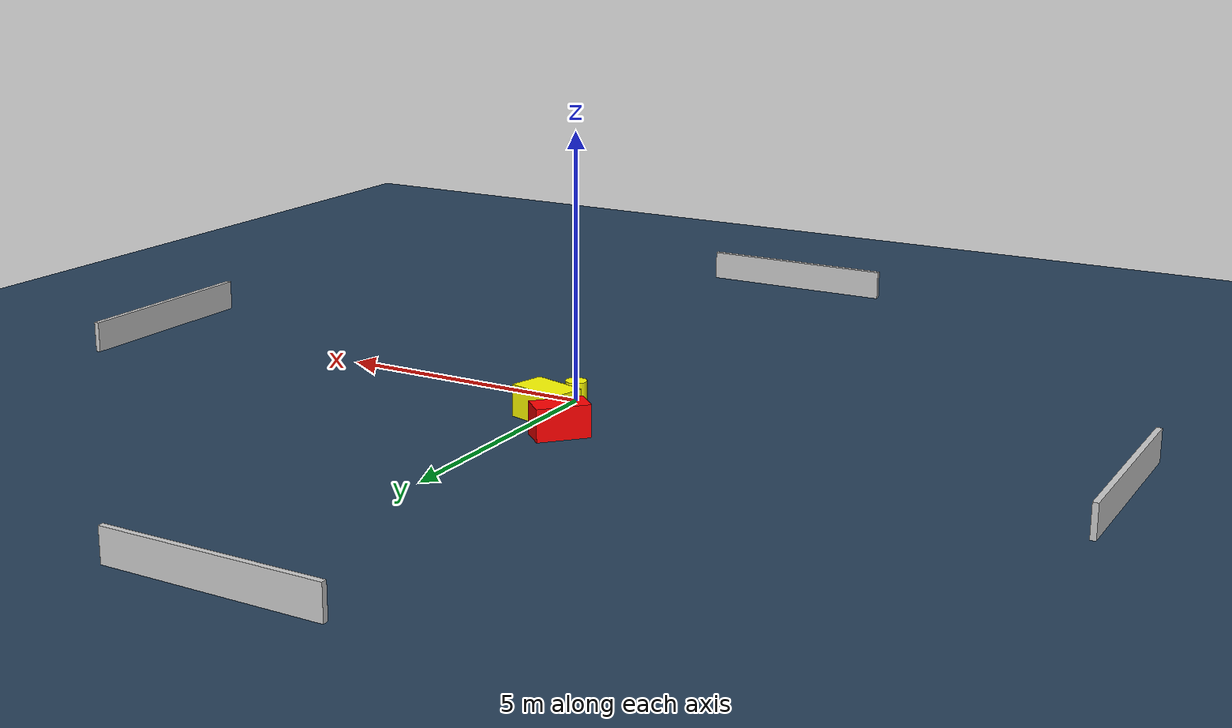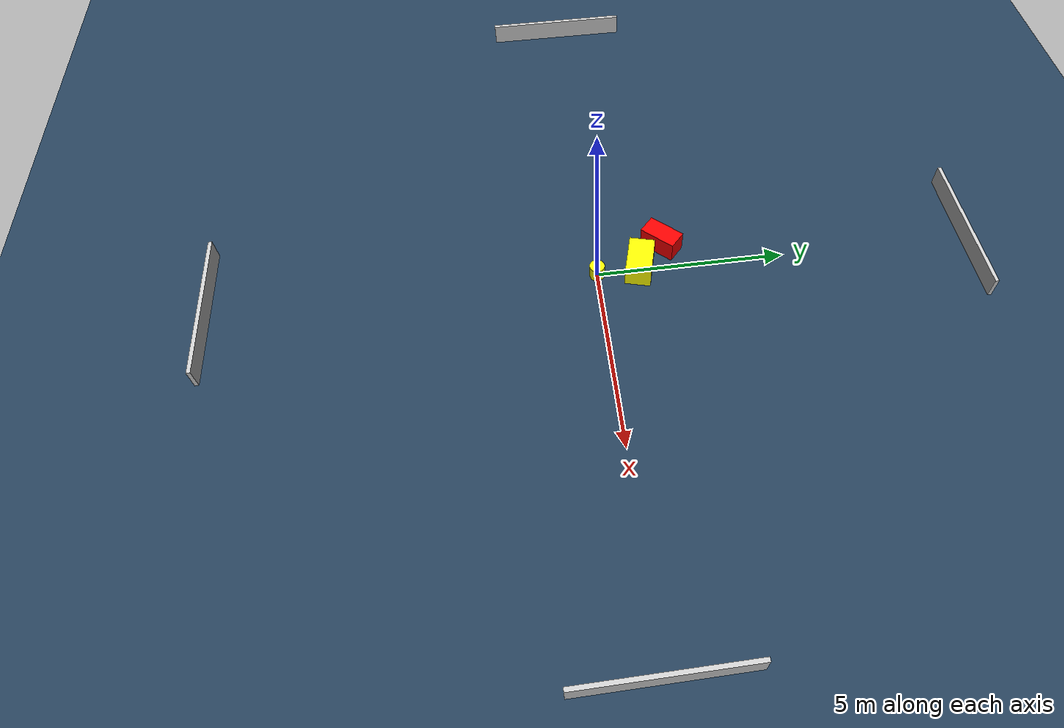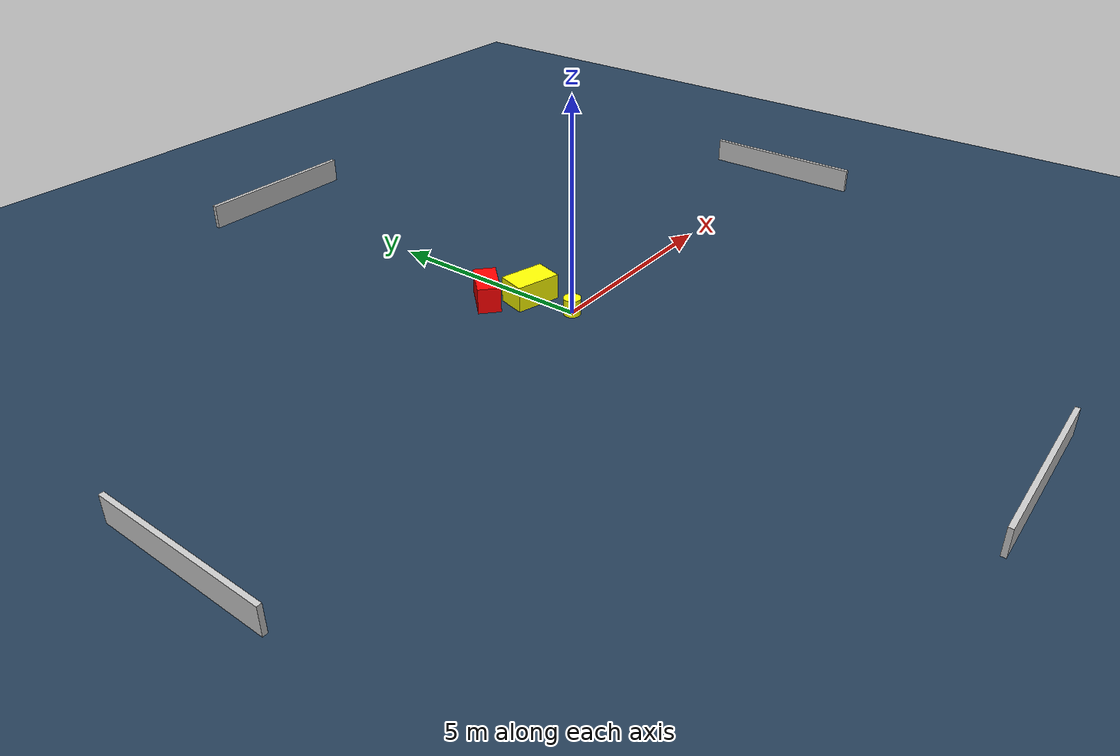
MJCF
<?xml version="1.0" ?>
<mujoco model="generated_environment">
  <option timestep="0.01" integrator="RK4" cone="elliptic"/>
  <default>
    <geom density="1"/>
  </default>
  <asset>
    <texture builtin="gradient" height="3072" name="skybox" rgb1="0.3 0.5 0.7" rgb2="0 0 0" type="skybox" width="512"/>
    <texture builtin="checker" height="300" name="groundplane" rgb1="0.2 0.3 0.4" rgb2="0.1 0.2 0.3" type="2d" width="300"/>
    <material name="groundplane" reflectance="0.2" texrepeat="5 5" texture="groundplane"/>
  </asset>
  <worldbody>
    <light dir="0 0 -1" directional="true" pos="0 0 1.5"/>
    <geom condim="3" friction="0.5 0.005 0.001" material="groundplane" name="floor" pos="0 0 0" size="0 0 0.05" type="plane"/>
    <body name="walls">
      <geom name="wall_1" condim="4" pos="-10.0 0.0 0.3" rgba="0.800000011920929 0.800000011920929 0.800000011920929 1.0" size="0.05 2.0 0.3" type="box"/>
      <geom name="wall_2" condim="4" pos="10.0 0.0 0.3" rgba="0.800000011920929 0.800000011920929 0.800000011920929 1.0" size="0.05 2.0 0.3" type="box"/>
      <geom name="wall_3" condim="4" pos="0.0 -10.0 0.3" rgba="0.800000011920929 0.800000011920929 0.800000011920929 1.0" size="2.0 0.05 0.3" type="box"/>
      <geom name="wall_4" condim="4" pos="0.0 10.0 0.3" rgba="0.800000011920929 0.800000011920929 0.800000011920929 1.0" size="2.0 0.05 0.3" type="box"/>
    </body>
    <body name="robot">
      <joint name="joint_x" type="slide" pos="0 0 0" axis="1 0 0"/>
      <joint name="joint_y" type="slide" pos="0 0 0" axis="0 1 0"/>
      <geom name="robot" type="cylinder" pos="0.0 0.0 0.2" size="0.2 0.2 0.0" mass="5.0" friction="1.0 0.005 0.0001" condim="4" rgba="1.0 1.0 0.0 1.0"/>
    </body>
    <body name="obstacle_1_movable">
      <geom name="obstacle_1_movable" condim="4" pos="-0.06231724025590375 1.1457205590658985 0.3" euler="0 0 254.81806137092022" friction="0.0 0.005 0.001" rgba="1.0 1.0 0.0 1.0" size="0.3369785121927764 0.533746350085259 0.3" type="box" mass="0.1"/>
      <joint type="free"/>
    </body>
    <body name="obstacle_2_static">
      <geom name="obstacle_2_static" condim="4" pos="-0.7433832278660013 1.837975658196907 0.3" euler="0 0 47.40054627263191" friction="0.0 0.005 0.001" rgba="1.0 0.0 0.0 1.0" size="0.49525099275609363 0.260202851588017 0.3" type="box"/>
    </body>
  </worldbody>
  <actuator>
    <motor name="actuator_x" joint="joint_x" gear="1" ctrlrange="-1 1"/>
    <motor name="actuator_y" joint="joint_y" gear="1" ctrlrange="-1 1"/>
  </actuator>
</mujoco>
